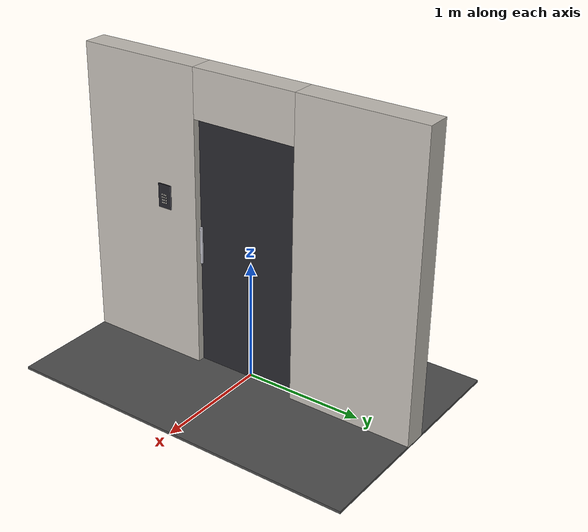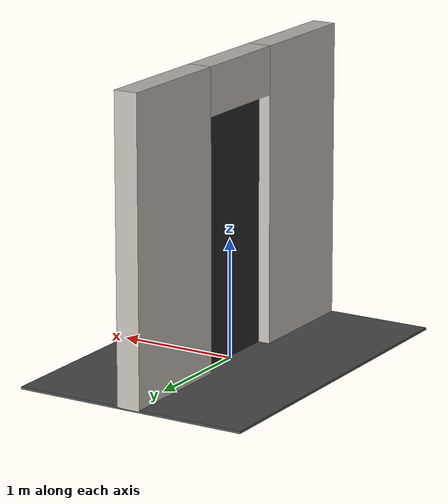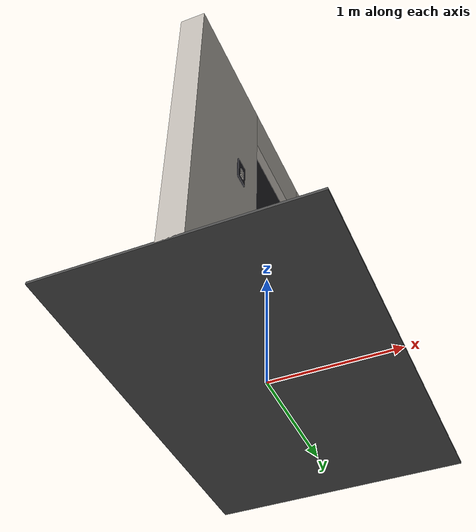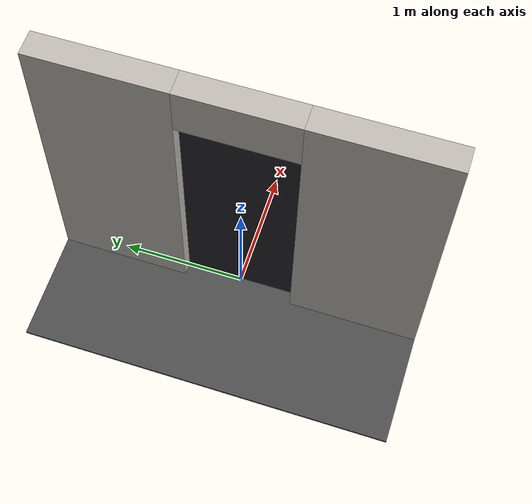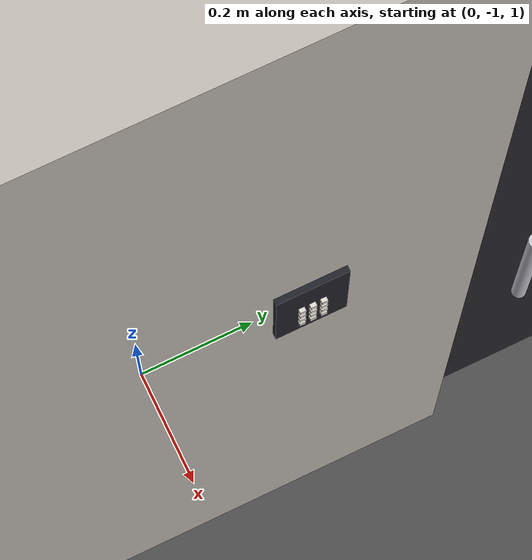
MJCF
<mujoco model="entrance_group_v3">
  <compiler angle="radian"/>

  <worldbody>
    <geom size="1 1.5 0.01" pos="0 0 0.0025" type="box" rgba="0.3 0.3 0.3 1"/>
    <geom size="0.1 0.525 1.25" pos="0 0.975 1.2525" type="box" rgba="0.75 0.73 0.7 1"/>
    <geom size="0.1 0.525 1.25" pos="0 -0.975 1.2525" type="box" rgba="0.75 0.73 0.7 1"/>
    <geom size="0.1 0.45 0.2" pos="0 0 2.3025" type="box" rgba="0.75 0.73 0.7 1"/>
    <geom size="0.0075 0.06 0.1" pos="0.1025 -0.75 1.4025" type="box" rgba="0.13 0.13 0.16 1"/>
    <body name="door" pos="0.1 0.45 1.0525">
      <inertial pos="-0.078666 -0.454387 0.000592885" quat="0.300127 0.30081 -0.639698 0.640487" mass="25.3" diaginertia="9.24574 9.24236 0.089873"/>
      <joint name="door_hinge" pos="0 0 0" axis="0 0 1" range="0 1.57" actuatorfrcrange="-100 100" damping="3" frictionloss="1.5"/>
      <geom size="0.02 0.45 1.05" pos="-0.08 -0.45 0" type="box" rgba="0.15 0.15 0.17 1"/>
      <geom size="0.0125 0.15" pos="0.0325 -0.82 0.05" type="cylinder" rgba="0.78 0.78 0.82 1"/>
    </body>
    <body name="button_1" pos="0.1125 -0.768 1.4155">
      <inertial pos="0.000386364 0 0" quat="0.5 0.5 0.5 0.5" mass="0.0055" diaginertia="1.0921e-07 1.0921e-07 1.01e-07"/>
      <joint name="button_1_joint" pos="0 0 0" axis="-1 0 0" type="slide" range="0 0.003" actuatorfrcrange="-20 20" damping="3" frictionloss="0.1"/>
      <geom size="0.004 0.005 0.005" type="box" rgba="0.88 0.86 0.82 1"/>
      <geom size="0.00025 0.00475 0.00475" pos="0.00425 0 0" type="box" rgba="0.95 0.94 0.9 1"/>
    </body>
    <body name="button_2" pos="0.1125 -0.75 1.4155">
      <inertial pos="0.000386364 0 0" quat="0.5 0.5 0.5 0.5" mass="0.0055" diaginertia="1.0921e-07 1.0921e-07 1.01e-07"/>
      <joint name="button_2_joint" pos="0 0 0" axis="-1 0 0" type="slide" range="0 0.003" actuatorfrcrange="-20 20" damping="3" frictionloss="0.1"/>
      <geom size="0.004 0.005 0.005" type="box" rgba="0.88 0.86 0.82 1"/>
      <geom size="0.00025 0.00475 0.00475" pos="0.00425 0 0" type="box" rgba="0.95 0.94 0.9 1"/>
    </body>
    <body name="button_3" pos="0.1125 -0.732 1.4155">
      <inertial pos="0.000386364 0 0" quat="0.5 0.5 0.5 0.5" mass="0.0055" diaginertia="1.0921e-07 1.0921e-07 1.01e-07"/>
      <joint name="button_3_joint" pos="0 0 0" axis="-1 0 0" type="slide" range="0 0.003" actuatorfrcrange="-20 20" damping="3" frictionloss="0.1"/>
      <geom size="0.004 0.005 0.005" type="box" rgba="0.88 0.86 0.82 1"/>
      <geom size="0.00025 0.00475 0.00475" pos="0.00425 0 0" type="box" rgba="0.95 0.94 0.9 1"/>
    </body>
    <body name="button_4" pos="0.1125 -0.768 1.3935">
      <inertial pos="0.000386364 0 0" quat="0.5 0.5 0.5 0.5" mass="0.0055" diaginertia="1.0921e-07 1.0921e-07 1.01e-07"/>
      <joint name="button_4_joint" pos="0 0 0" axis="-1 0 0" type="slide" range="0 0.003" actuatorfrcrange="-20 20" damping="3" frictionloss="0.1"/>
      <geom size="0.004 0.005 0.005" type="box" rgba="0.88 0.86 0.82 1"/>
      <geom size="0.00025 0.00475 0.00475" pos="0.00425 0 0" type="box" rgba="0.95 0.94 0.9 1"/>
    </body>
    <body name="button_5" pos="0.1125 -0.75 1.3935">
      <inertial pos="0.000386364 0 0" quat="0.5 0.5 0.5 0.5" mass="0.0055" diaginertia="1.0921e-07 1.0921e-07 1.01e-07"/>
      <joint name="button_5_joint" pos="0 0 0" axis="-1 0 0" type="slide" range="0 0.003" actuatorfrcrange="-20 20" damping="3" frictionloss="0.1"/>
      <geom size="0.004 0.005 0.005" type="box" rgba="0.88 0.86 0.82 1"/>
      <geom size="0.00025 0.00475 0.00475" pos="0.00425 0 0" type="box" rgba="0.95 0.94 0.9 1"/>
    </body>
    <body name="button_6" pos="0.1125 -0.732 1.3935">
      <inertial pos="0.000386364 0 0" quat="0.5 0.5 0.5 0.5" mass="0.0055" diaginertia="1.0921e-07 1.0921e-07 1.01e-07"/>
      <joint name="button_6_joint" pos="0 0 0" axis="-1 0 0" type="slide" range="0 0.003" actuatorfrcrange="-20 20" damping="3" frictionloss="0.1"/>
      <geom size="0.004 0.005 0.005" type="box" rgba="0.88 0.86 0.82 1"/>
      <geom size="0.00025 0.00475 0.00475" pos="0.00425 0 0" type="box" rgba="0.95 0.94 0.9 1"/>
    </body>
    <body name="button_7" pos="0.1125 -0.768 1.3715">
      <inertial pos="0.000386364 0 0" quat="0.5 0.5 0.5 0.5" mass="0.0055" diaginertia="1.0921e-07 1.0921e-07 1.01e-07"/>
      <joint name="button_7_joint" pos="0 0 0" axis="-1 0 0" type="slide" range="0 0.003" actuatorfrcrange="-20 20" damping="3" frictionloss="0.1"/>
      <geom size="0.004 0.005 0.005" type="box" rgba="0.88 0.86 0.82 1"/>
      <geom size="0.00025 0.00475 0.00475" pos="0.00425 0 0" type="box" rgba="0.95 0.94 0.9 1"/>
    </body>
    <body name="button_8" pos="0.1125 -0.75 1.3715">
      <inertial pos="0.000386364 0 0" quat="0.5 0.5 0.5 0.5" mass="0.0055" diaginertia="1.0921e-07 1.0921e-07 1.01e-07"/>
      <joint name="button_8_joint" pos="0 0 0" axis="-1 0 0" type="slide" range="0 0.003" actuatorfrcrange="-20 20" damping="3" frictionloss="0.1"/>
      <geom size="0.004 0.005 0.005" type="box" rgba="0.88 0.86 0.82 1"/>
      <geom size="0.00025 0.00475 0.00475" pos="0.00425 0 0" type="box" rgba="0.95 0.94 0.9 1"/>
    </body>
    <body name="button_9" pos="0.1125 -0.732 1.3715">
      <inertial pos="0.000386364 0 0" quat="0.5 0.5 0.5 0.5" mass="0.0055" diaginertia="1.0921e-07 1.0921e-07 1.01e-07"/>
      <joint name="button_9_joint" pos="0 0 0" axis="-1 0 0" type="slide" range="0 0.003" actuatorfrcrange="-20 20" damping="3" frictionloss="0.1"/>
      <geom size="0.004 0.005 0.005" type="box" rgba="0.88 0.86 0.82 1"/>
      <geom size="0.00025 0.00475 0.00475" pos="0.00425 0 0" type="box" rgba="0.95 0.94 0.9 1"/>
    </body>
    <body name="button_star" pos="0.1125 -0.768 1.3495">
      <inertial pos="0.000386364 0 0" quat="0.5 0.5 0.5 0.5" mass="0.0055" diaginertia="1.0921e-07 1.0921e-07 1.01e-07"/>
      <joint name="button_star_joint" pos="0 0 0" axis="-1 0 0" type="slide" range="0 0.003" actuatorfrcrange="-20 20" damping="3" frictionloss="0.1"/>
      <geom size="0.004 0.005 0.005" type="box" rgba="0.88 0.86 0.82 1"/>
      <geom size="0.00025 0.00475 0.00475" pos="0.00425 0 0" type="box" rgba="0.95 0.94 0.9 1"/>
    </body>
    <body name="button_0" pos="0.1125 -0.75 1.3495">
      <inertial pos="0.000386364 0 0" quat="0.5 0.5 0.5 0.5" mass="0.0055" diaginertia="1.0921e-07 1.0921e-07 1.01e-07"/>
      <joint name="button_0_joint" pos="0 0 0" axis="-1 0 0" type="slide" range="0 0.003" actuatorfrcrange="-20 20" damping="3" frictionloss="0.1"/>
      <geom size="0.004 0.005 0.005" type="box" rgba="0.88 0.86 0.82 1"/>
      <geom size="0.00025 0.00475 0.00475" pos="0.00425 0 0" type="box" rgba="0.95 0.94 0.9 1"/>
    </body>
    <body name="button_hash" pos="0.1125 -0.732 1.3495">
      <inertial pos="0.000386364 0 0" quat="0.5 0.5 0.5 0.5" mass="0.0055" diaginertia="1.0921e-07 1.0921e-07 1.01e-07"/>
      <joint name="button_hash_joint" pos="0 0 0" axis="-1 0 0" type="slide" range="0 0.003" actuatorfrcrange="-20 20" damping="3" frictionloss="0.1"/>
      <geom size="0.004 0.005 0.005" type="box" rgba="0.88 0.86 0.82 1"/>
      <geom size="0.00025 0.00475 0.00475" pos="0.00425 0 0" type="box" rgba="0.95 0.94 0.9 1"/>
    </body>
  </worldbody>
</mujoco>
